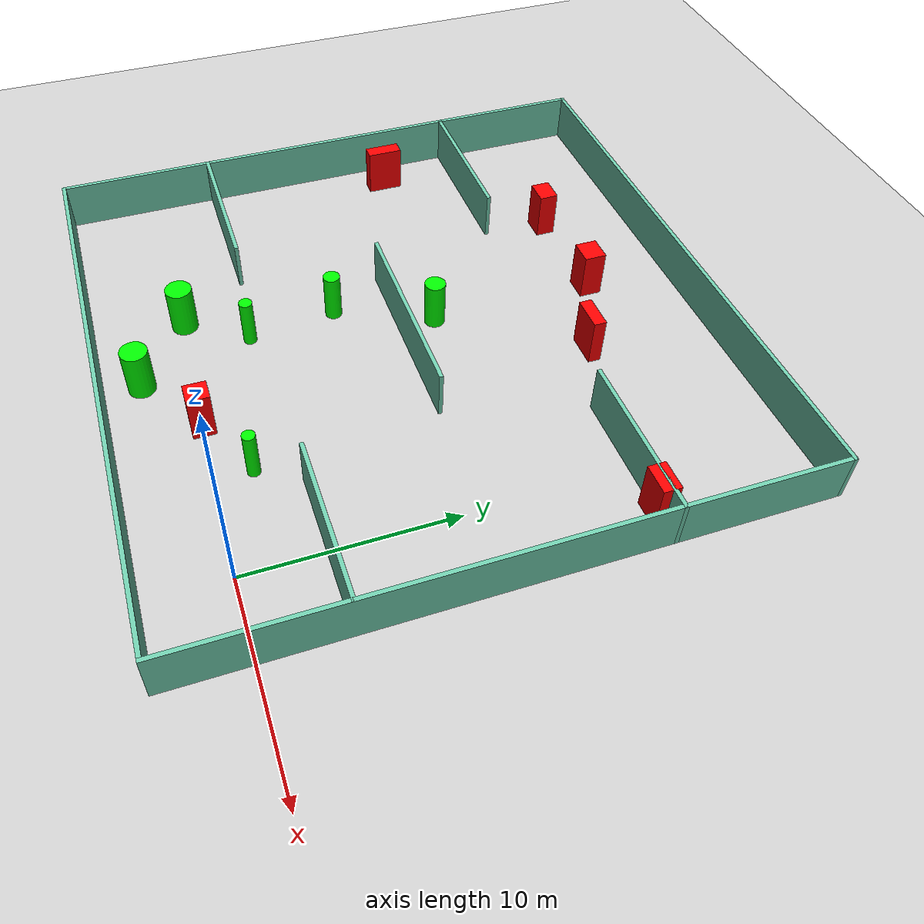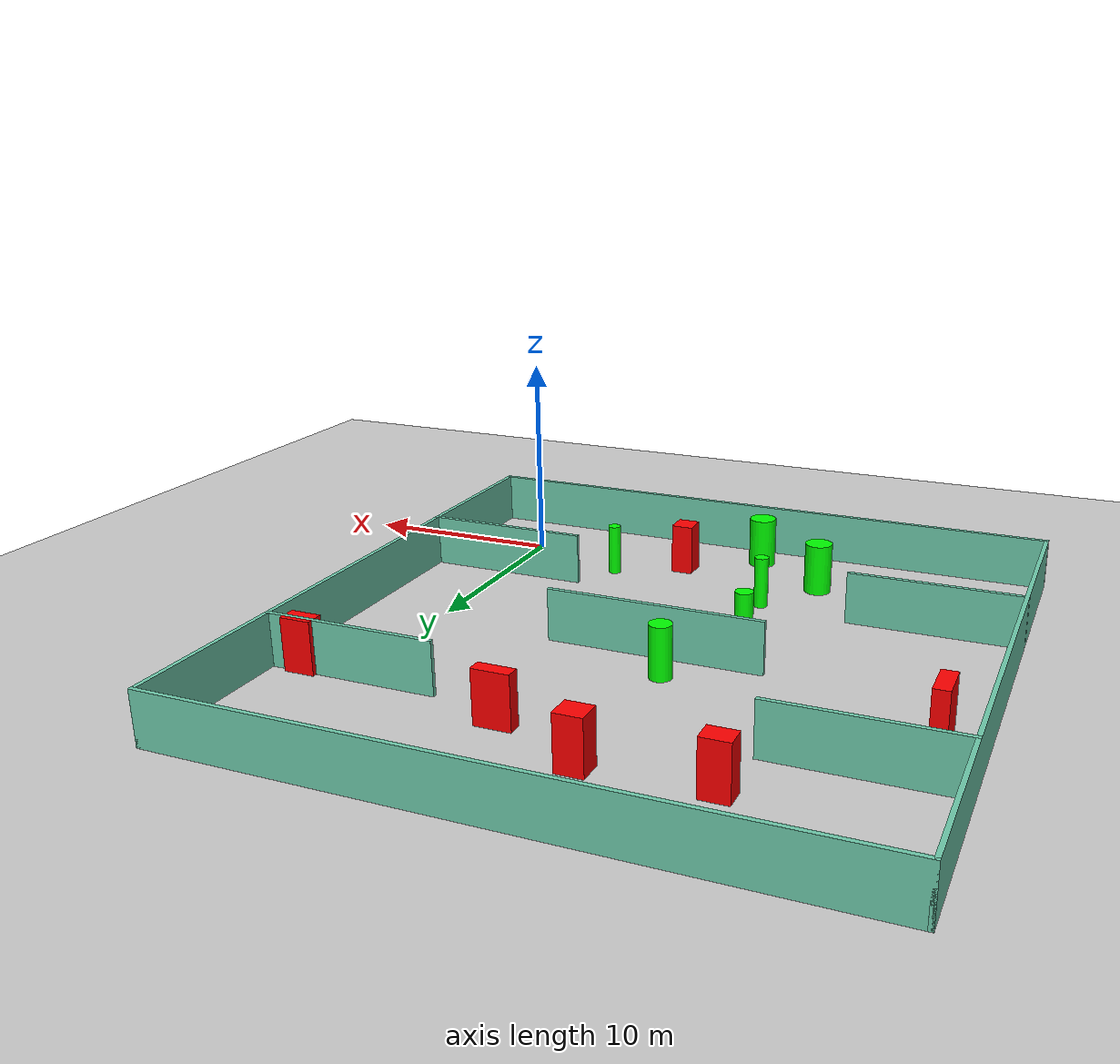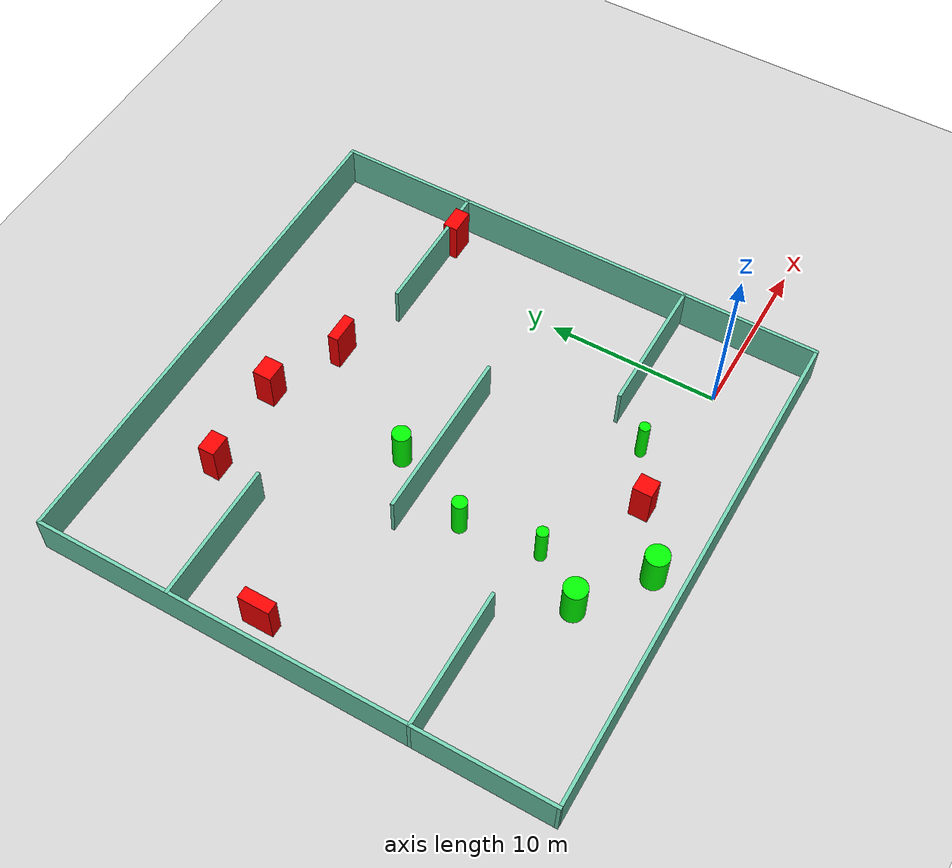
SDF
<sdf version="1.7">
 <world name="default">
  <light name="sun" type="directional">
   <pose>0 0 10 0 -0 0</pose>
   <diffuse>0.8 0.8 0.8 1</diffuse>
   <specular>0.2 0.2 0.2 1</specular>
   <attenuation>
    <range>1000</range>
    <constant>0.9</constant>
    <linear>0.01</linear>
    <quadratic>0.001</quadratic>
   </attenuation>
   <direction>-0.5 0.1 -0.9</direction>
   <spot><inner_angle>0</inner_angle><outer_angle>0</outer_angle><falloff>0</falloff></spot>
  </light>
  <model name="ground_plane">
   <static>1</static>
   <link name="link">
    <collision name="collision">
     <geometry><plane><normal>0 0 1</normal><size>100 100</size></plane></geometry>
     <surface>
      <contact><collide_bitmask>65535</collide_bitmask></contact>
      <friction><ode><mu>100</mu><mu2>50</mu2></ode></friction>
     </surface>
    </collision>
    <visual name="visual">
     <cast_shadows>0</cast_shadows>
     <geometry><plane><normal>0 0 1</normal><size>100 100</size></plane></geometry>
     <material>
      <script><uri>file://media/materials/scripts/gazebo.material</uri><name>Gazebo/Grey</name></script>
     </material>
    </visual>
   </link>
  </model>
  <gravity>0 0 -9.8</gravity>
  <magnetic_field>6e-06 2.3e-05 -4.2e-05</magnetic_field>
  <atmosphere type="adiabatic"/>
  <physics type="ode">
   <max_step_size>0.001</max_step_size>
   <real_time_factor>1</real_time_factor>
   <real_time_update_rate>1000</real_time_update_rate>
  </physics>
  <scene><ambient>0.4 0.4 0.4 1</ambient><background>0.7 0.7 0.7 1</background><shadows>1</shadows></scene>
  <spherical_coordinates>
   <surface_model>EARTH_WGS84</surface_model>
   <latitude_deg>0</latitude_deg>
   <longitude_deg>0</longitude_deg>
   <elevation>0</elevation>
   <heading_deg>0</heading_deg>
  </spherical_coordinates>
  <model name="my_base_walls">
   <link name="Wall_10">
    <collision name="Wall_10_Collision">
     <geometry><box><size>8.2 0.2 2.5</size></box></geometry>
     <pose>0 0 1.25 0 -0 0</pose>
    </collision>
    <visual name="Wall_10_Visual">
     <pose>0 0 1.25 0 -0 0</pose>
     <geometry><box><size>8.2 0.2 2.5</size></box></geometry>
     <material>
      <script><uri>file://media/materials/scripts/gazebo.material</uri><name>Gazebo/Grey</name></script>
      <ambient>0.435294 0.796078 0.67451 1</ambient>
     </material>
     <meta><layer>0</layer></meta>
    </visual>
    <pose>-11 -7 0 0 -0 0</pose>
   </link>
   <link name="Wall_12">
    <collision name="Wall_12_Collision">
     <geometry><box><size>8.2 0.2 2.5</size></box></geometry>
     <pose>0 0 1.25 0 -0 0</pose>
    </collision>
    <visual name="Wall_12_Visual">
     <pose>0 0 1.25 0 -0 0</pose>
     <geometry><box><size>8.2 0.2 2.5</size></box></geometry>
     <material>
      <script><uri>file://media/materials/scripts/gazebo.material</uri><name>Gazebo/Grey</name></script>
      <ambient>0.435294 0.796078 0.67451 1</ambient>
     </material>
     <meta><layer>0</layer></meta>
    </visual>
    <pose>-11 7 0 0 -0 0</pose>
   </link>
   <link name="Wall_14">
    <collision name="Wall_14_Collision">
     <geometry><box><size>8.2 0.2 2.5</size></box></geometry>
     <pose>0 0 1.25 0 -0 0</pose>
    </collision>
    <visual name="Wall_14_Visual">
     <pose>0 0 1.25 0 -0 0</pose>
     <geometry><box><size>8.2 0.2 2.5</size></box></geometry>
     <material>
      <script><uri>file://media/materials/scripts/gazebo.material</uri><name>Gazebo/Grey</name></script>
      <ambient>0.435294 0.796078 0.67451 1</ambient>
     </material>
     <meta><layer>0</layer></meta>
    </visual>
    <pose>11 7 0 0 -0 3.14159</pose>
   </link>
   <link name="Wall_16">
    <collision name="Wall_16_Collision">
     <geometry><box><size>10.2 0.2 2.5</size></box></geometry>
     <pose>0 0 1.25 0 -0 0</pose>
    </collision>
    <visual name="Wall_16_Visual">
     <pose>0 0 1.25 0 -0 0</pose>
     <geometry><box><size>10.2 0.2 2.5</size></box></geometry>
     <material>
      <script><uri>file://media/materials/scripts/gazebo.material</uri><name>Gazebo/Grey</name></script>
      <ambient>0.435294 0.796078 0.67451 1</ambient>
     </material>
     <meta><layer>0</layer></meta>
    </visual>
    <pose>0 0 0 0 -0 3.14159</pose>
   </link>
   <link name="Wall_2">
    <collision name="Wall_2_Collision">
     <geometry><box><size>30.2 0.2 2.5</size></box></geometry>
     <pose>0 0 1.25 0 -0 0</pose>
    </collision>
    <visual name="Wall_2_Visual">
     <pose>0 0 1.25 0 -0 0</pose>
     <geometry><box><size>30.2 0.2 2.5</size></box></geometry>
     <material>
      <script><uri>file://media/materials/scripts/gazebo.material</uri><name>Gazebo/Grey</name></script>
      <ambient>0.435294 0.796078 0.67451 1</ambient>
     </material>
     <meta><layer>0</layer></meta>
    </visual>
    <pose>0 -15 0 0 -0 3.14159</pose>
   </link>
   <link name="Wall_3">
    <collision name="Wall_3_Collision">
     <geometry><box><size>30.2 0.2 2.5</size></box></geometry>
     <pose>0 0 1.25 0 -0 0</pose>
    </collision>
    <visual name="Wall_3_Visual">
     <pose>0 0 1.25 0 -0 0</pose>
     <geometry><box><size>30.2 0.2 2.5</size></box></geometry>
     <material>
      <script><uri>file://media/materials/scripts/gazebo.material</uri><name>Gazebo/Grey</name></script>
      <ambient>0.435294 0.796078 0.67451 1</ambient>
     </material>
     <meta><layer>0</layer></meta>
    </visual>
    <pose>-15 0 0 0 -0 1.5708</pose>
   </link>
   <link name="Wall_4">
    <collision name="Wall_4_Collision">
     <geometry><box><size>30.2 0.2 2.5</size></box></geometry>
     <pose>0 0 1.25 0 -0 0</pose>
    </collision>
    <visual name="Wall_4_Visual">
     <pose>0 0 1.25 0 -0 0</pose>
     <geometry><box><size>30.2 0.2 2.5</size></box></geometry>
     <material>
      <script><uri>file://media/materials/scripts/gazebo.material</uri><name>Gazebo/Grey</name></script>
      <ambient>0.435294 0.796078 0.67451 1</ambient>
     </material>
     <meta><layer>0</layer></meta>
    </visual>
    <pose>0 15 0 0 -0 0</pose>
   </link>
   <link name="Wall_6">
    <collision name="Wall_6_Collision">
     <geometry><box><size>30.2 0.2 2.5</size></box></geometry>
     <pose>0 0 1.25 0 -0 0</pose>
    </collision>
    <visual name="Wall_6_Visual">
     <pose>0 0 1.25 0 -0 0</pose>
     <geometry><box><size>30.2 0.2 2.5</size></box></geometry>
     <material>
      <script><uri>file://media/materials/scripts/gazebo.material</uri><name>Gazebo/Grey</name></script>
      <ambient>0.435294 0.796078 0.67451 1</ambient>
     </material>
     <meta><layer>0</layer></meta>
    </visual>
    <pose>15 0 0 0 -0 1.5708</pose>
   </link>
   <link name="Wall_8">
    <collision name="Wall_8_Collision">
     <geometry><box><size>8.2 0.2 2.5</size></box></geometry>
     <pose>0 0 1.25 0 -0 0</pose>
    </collision>
    <visual name="Wall_8_Visual">
     <pose>0 0 1.25 0 -0 0</pose>
     <geometry><box><size>8.2 0.2 2.5</size></box></geometry>
     <material>
      <script><uri>file://media/materials/scripts/gazebo.material</uri><name>Gazebo/Grey</name></script>
      <ambient>0.435294 0.796078 0.67451 1</ambient>
     </material>
     <meta><layer>0</layer></meta>
    </visual>
    <pose>11 -7 0 0 -0 3.14159</pose>
   </link>
   <static>1</static>
   <pose>-11 11 0 0 -0 0</pose>
  </model>
  <model name="cylinder1">
   <static>1</static>
   <link name="link">
    <inertial>
     <mass>1</mass>
     <inertia><ixx>0.5</ixx><ixy>0</ixy><ixz>0</ixz><iyy>0.5</iyy><iyz>0</iyz><izz>1</izz></inertia>
    </inertial>
    <collision name="collision">
     <geometry><cylinder><radius>0.6709759960908321</radius><length>2.5</length></cylinder></geometry>
    </collision>
    <visual name="visual">
     <geometry><cylinder><radius>0.6709759960908321</radius><length>2.5</length></cylinder></geometry>
     <material>
      <ambient>0 1 0 1</ambient>
      <diffuse>0 1 0 1</diffuse>
      <specular>0.1 0.1 0.1 1</specular>
      <emissive>0 0 0 0</emissive>
     </material>
    </visual>
   </link>
   <pose>-11.907523834333901 -2.092188758198512 1.25 0 0 0</pose>
  </model>
  <model name="cylinder2">
   <static>1</static>
   <link name="link">
    <inertial>
     <mass>1</mass>
     <inertia><ixx>0.5</ixx><ixy>0</ixy><ixz>0</ixz><iyy>0.5</iyy><iyz>0</iyz><izz>1</izz></inertia>
    </inertial>
    <collision name="collision">
     <geometry><cylinder><radius>0.31491777079293054</radius><length>2.5</length></cylinder></geometry>
    </collision>
    <visual name="visual">
     <geometry><cylinder><radius>0.31491777079293054</radius><length>2.5</length></cylinder></geometry>
     <material>
      <ambient>0 1 0 1</ambient>
      <diffuse>0 1 0 1</diffuse>
      <specular>0.1 0.1 0.1 1</specular>
      <emissive>0 0 0 0</emissive>
     </material>
    </visual>
   </link>
   <pose>-5.202883120799697 1.9297841119437846 1.25 0 0 0</pose>
  </model>
  <model name="cylinder3">
   <static>1</static>
   <link name="link">
    <inertial>
     <mass>1</mass>
     <inertia><ixx>0.5</ixx><ixy>0</ixy><ixz>0</ixz><iyy>0.5</iyy><iyz>0</iyz><izz>1</izz></inertia>
    </inertial>
    <collision name="collision">
     <geometry><cylinder><radius>0.3332547590143178</radius><length>2.5</length></cylinder></geometry>
    </collision>
    <visual name="visual">
     <geometry><cylinder><radius>0.3332547590143178</radius><length>2.5</length></cylinder></geometry>
     <material>
      <ambient>0 1 0 1</ambient>
      <diffuse>0 1 0 1</diffuse>
      <specular>0.1 0.1 0.1 1</specular>
      <emissive>0 0 0 0</emissive>
     </material>
    </visual>
   </link>
   <pose>-13.608053165719506 3.5619524745571205 1.25 0 0 0</pose>
  </model>
  <model name="cylinder4">
   <static>1</static>
   <link name="link">
    <inertial>
     <mass>1</mass>
     <inertia><ixx>0.5</ixx><ixy>0</ixy><ixz>0</ixz><iyy>0.5</iyy><iyz>0</iyz><izz>1</izz></inertia>
    </inertial>
    <collision name="collision">
     <geometry><cylinder><radius>0.526638087986468</radius><length>2.5</length></cylinder></geometry>
    </collision>
    <visual name="visual">
     <geometry><cylinder><radius>0.526638087986468</radius><length>2.5</length></cylinder></geometry>
     <material>
      <ambient>0 1 0 1</ambient>
      <diffuse>0 1 0 1</diffuse>
      <specular>0.1 0.1 0.1 1</specular>
      <emissive>0 0 0 0</emissive>
     </material>
    </visual>
   </link>
   <pose>-12.081756869154837 12.85613491414481 1.25 0 0 0</pose>
  </model>
  <model name="cylinder5">
   <static>1</static>
   <link name="link">
    <inertial>
     <mass>1</mass>
     <inertia><ixx>0.5</ixx><ixy>0</ixy><ixz>0</ixz><iyy>0.5</iyy><iyz>0</iyz><izz>1</izz></inertia>
    </inertial>
    <collision name="collision">
     <geometry><cylinder><radius>0.6630042906806883</radius><length>2.5</length></cylinder></geometry>
    </collision>
    <visual name="visual">
     <geometry><cylinder><radius>0.6630042906806883</radius><length>2.5</length></cylinder></geometry>
     <material>
      <ambient>0 1 0 1</ambient>
      <diffuse>0 1 0 1</diffuse>
      <specular>0.1 0.1 0.1 1</specular>
      <emissive>0 0 0 0</emissive>
     </material>
    </visual>
   </link>
   <pose>-15.627552172354736 0.6090820044665839 1.25 0 0 0</pose>
  </model>
  <model name="cylinder6">
   <static>1</static>
   <link name="link">
    <inertial>
     <mass>1</mass>
     <inertia><ixx>0.5</ixx><ixy>0</ixy><ixz>0</ixz><iyy>0.5</iyy><iyz>0</iyz><izz>1</izz></inertia>
    </inertial>
    <collision name="collision">
     <geometry><cylinder><radius>0.42407262959115233</radius><length>2.5</length></cylinder></geometry>
    </collision>
    <visual name="visual">
     <geometry><cylinder><radius>0.42407262959115233</radius><length>2.5</length></cylinder></geometry>
     <material>
      <ambient>0 1 0 1</ambient>
      <diffuse>0 1 0 1</diffuse>
      <specular>0.1 0.1 0.1 1</specular>
      <emissive>0 0 0 0</emissive>
     </material>
    </visual>
   </link>
   <pose>-14.203842339922963 8.07687942029212 1.25 0 0 0</pose>
  </model>
  <model name="box1">
   <static>1</static>
   <link name="link">
    <inertial>
     <mass>1</mass>
     <inertia><ixx>0.083</ixx><ixy>0</ixy><ixz>0</ixz><iyy>0.083</iyy><iyz>0</iyz><izz>0.083</izz></inertia>
    </inertial>
    <collision name="collision">
     <geometry><box><size>1.28986842177231 0.9765791564194206 2.5</size></box></geometry>
    </collision>
    <visual name="visual">
     <geometry><box><size>1.28986842177231 0.9765791564194206 2.5</size></box></geometry>
     <material>
      <ambient>1 0 0 1</ambient>
      <diffuse>1 0 0 1</diffuse>
      <specular>0.1 0.1 0.1 1</specular>
      <emissive>0 0 0 0</emissive>
     </material>
    </visual>
    <sensor name="my_contact" type="contact">
     <contact><collision>box_collision</collision><topic>__default_topic__</topic></contact>
    </sensor>
   </link>
   <pose>-17.573767508491997 21.146579657813447 1.25 0 0 0</pose>
  </model>
  <model name="box2">
   <static>1</static>
   <link name="link">
    <inertial>
     <mass>1</mass>
     <inertia><ixx>0.083</ixx><ixy>0</ixy><ixz>0</ixz><iyy>0.083</iyy><iyz>0</iyz><izz>0.083</izz></inertia>
    </inertial>
    <collision name="collision">
     <geometry><box><size>0.7271405016536846 1.8560361245962296 2.5</size></box></geometry>
    </collision>
    <visual name="visual">
     <geometry><box><size>0.7271405016536846 1.8560361245962296 2.5</size></box></geometry>
     <material>
      <ambient>1 0 0 1</ambient>
      <diffuse>1 0 0 1</diffuse>
      <specular>0.1 0.1 0.1 1</specular>
      <emissive>0 0 0 0</emissive>
     </material>
    </visual>
    <sensor name="my_contact" type="contact">
     <contact><collision>box_collision</collision><topic>__default_topic__</topic></contact>
    </sensor>
   </link>
   <pose>-24.148189974965906 13.876402768751017 1.25 0 0 0</pose>
  </model>
  <model name="box3">
   <static>1</static>
   <link name="link">
    <inertial>
     <mass>1</mass>
     <inertia><ixx>0.083</ixx><ixy>0</ixy><ixz>0</ixz><iyy>0.083</iyy><iyz>0</iyz><izz>0.083</izz></inertia>
    </inertial>
    <collision name="collision">
     <geometry><box><size>1.4652545292608201 0.8741177863355867 2.5</size></box></geometry>
    </collision>
    <visual name="visual">
     <geometry><box><size>1.4652545292608201 0.8741177863355867 2.5</size></box></geometry>
     <material>
      <ambient>1 0 0 1</ambient>
      <diffuse>1 0 0 1</diffuse>
      <specular>0.1 0.1 0.1 1</specular>
      <emissive>0 0 0 0</emissive>
     </material>
    </visual>
    <sensor name="my_contact" type="contact">
     <contact><collision>box_collision</collision><topic>__default_topic__</topic></contact>
    </sensor>
   </link>
   <pose>2.420931948659714 17.883325193775008 1.25 0 0 0</pose>
  </model>
  <model name="box4">
   <static>1</static>
   <link name="link">
    <inertial>
     <mass>1</mass>
     <inertia><ixx>0.083</ixx><ixy>0</ixy><ixz>0</ixz><iyy>0.083</iyy><iyz>0</iyz><izz>0.083</izz></inertia>
    </inertial>
    <collision name="collision">
     <geometry><box><size>1.0663685212399339 1.1142627239080904 2.5</size></box></geometry>
    </collision>
    <visual name="visual">
     <geometry><box><size>1.0663685212399339 1.1142627239080904 2.5</size></box></geometry>
     <material>
      <ambient>1 0 0 1</ambient>
      <diffuse>1 0 0 1</diffuse>
      <specular>0.1 0.1 0.1 1</specular>
      <emissive>0 0 0 0</emissive>
     </material>
    </visual>
    <sensor name="my_contact" type="contact">
     <contact><collision>box_collision</collision><topic>__default_topic__</topic></contact>
    </sensor>
   </link>
   <pose>-8.463685779612687 0.23294937157499218 1.25 0 0 0</pose>
  </model>
  <model name="box5">
   <static>1</static>
   <link name="link">
    <inertial>
     <mass>1</mass>
     <inertia><ixx>0.083</ixx><ixy>0</ixy><ixz>0</ixz><iyy>0.083</iyy><iyz>0</iyz><izz>0.083</izz></inertia>
    </inertial>
    <collision name="collision">
     <geometry><box><size>1.7188067731968588 0.6334991346185804 2.5</size></box></geometry>
    </collision>
    <visual name="visual">
     <geometry><box><size>1.7188067731968588 0.6334991346185804 2.5</size></box></geometry>
     <material>
      <ambient>1 0 0 1</ambient>
      <diffuse>1 0 0 1</diffuse>
      <specular>0.1 0.1 0.1 1</specular>
      <emissive>0 0 0 0</emissive>
     </material>
    </visual>
    <sensor name="my_contact" type="contact">
     <contact><collision>box_collision</collision><topic>__default_topic__</topic></contact>
    </sensor>
   </link>
   <pose>-7.7090867462940444 19.402891569534923 1.25 0 0 0</pose>
  </model>
  <model name="box6">
   <static>1</static>
   <link name="link">
    <inertial>
     <mass>1</mass>
     <inertia><ixx>0.083</ixx><ixy>0</ixy><ixz>0</ixz><iyy>0.083</iyy><iyz>0</iyz><izz>0.083</izz></inertia>
    </inertial>
    <collision name="collision">
     <geometry><box><size>1.2633220784013361 1.1233394895572613 2.5</size></box></geometry>
    </collision>
    <visual name="visual">
     <geometry><box><size>1.2633220784013361 1.1233394895572613 2.5</size></box></geometry>
     <material>
      <ambient>1 0 0 1</ambient>
      <diffuse>1 0 0 1</diffuse>
      <specular>0.1 0.1 0.1 1</specular>
      <emissive>0 0 0 0</emissive>
     </material>
    </visual>
    <sensor name="my_contact" type="contact">
     <contact><collision>box_collision</collision><topic>__default_topic__</topic></contact>
    </sensor>
   </link>
   <pose>-12.067786943981645 21.341820882294513 1.25 0 0 0</pose>
  </model>
 </world>
</sdf>
